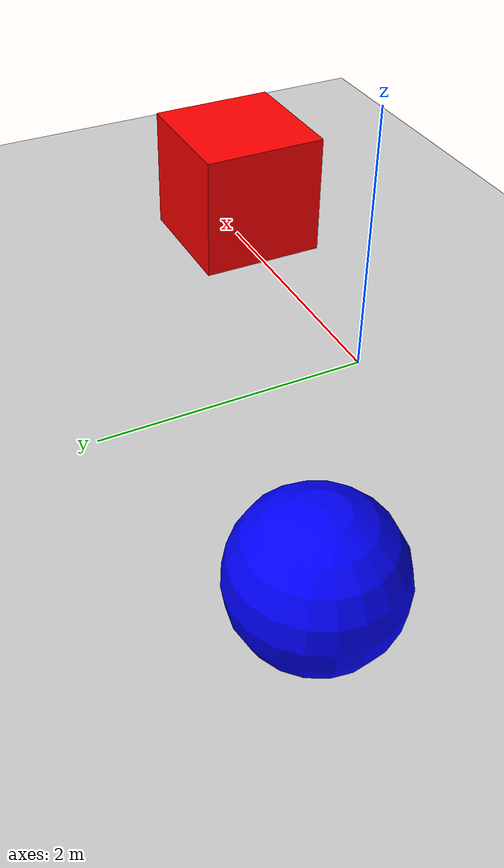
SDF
<?xml version="1.0" ?>
<sdf version="1.6">
  <world name="trajectory_follower">

    <physics name="1ms" type="ignored">
      <max_step_size>0.001</max_step_size>
      <real_time_factor>1.0</real_time_factor>
    </physics>
    <plugin
      filename="ignition-gazebo-physics-system"
      name="ignition::gazebo::systems::Physics">
    </plugin>
    <plugin
      filename="ignition-gazebo-user-commands-system"
      name="ignition::gazebo::systems::UserCommands">
    </plugin>
    <plugin
      filename="ignition-gazebo-scene-broadcaster-system"
      name="ignition::gazebo::systems::SceneBroadcaster">
    </plugin>

    <light type="directional" name="sun">
      <cast_shadows>true</cast_shadows>
      <pose>0 0 10 0 0 0</pose>
      <diffuse>1 1 1 1</diffuse>
      <specular>0.5 0.5 0.5 1</specular>
      <attenuation>
        <range>1000</range>
        <constant>0.9</constant>
        <linear>0.01</linear>
        <quadratic>0.001</quadratic>
      </attenuation>
      <direction>-0.5 0.1 -0.9</direction>
    </light>

    <model name="ground_plane">
      <static>true</static>
      <link name="link">
        <collision name="collision">
          <geometry>
            <plane>
              <normal>0 0 1</normal>
              <size>100 100</size>
            </plane>
          </geometry>
        </collision>
        <visual name="visual">
          <geometry>
            <plane>
              <normal>0 0 1</normal>
              <size>100 100</size>
            </plane>
          </geometry>
          <material>
            <ambient>0.8 0.8 0.8 1</ambient>
            <diffuse>0.8 0.8 0.8 1</diffuse>
            <specular>0.8 0.8 0.8 1</specular>
          </material>
        </visual>
      </link>
    </model>

    <model name="box">
      <pose>2 0 0.5 0 0 0</pose>
      <link name="box_link">
        <inertial>
          <inertia>
            <ixx>0.16666</ixx>
            <ixy>0</ixy>
            <ixz>0</ixz>
            <iyy>0.16666</iyy>
            <iyz>0</iyz>
            <izz>0.16666</izz>
          </inertia>
          <mass>1.0</mass>
        </inertial>
        <collision name="box_collision">
          <geometry>
            <box>
              <size>1 1 1</size>
            </box>
          </geometry>
        </collision>

        <visual name="box_visual">
          <geometry>
            <box>
              <size>1 1 1</size>
            </box>
          </geometry>
          <material>
            <ambient>1 0 0 1</ambient>
            <diffuse>1 0 0 1</diffuse>
            <specular>1 0 0 1</specular>
          </material>
        </visual>

      </link>

      <plugin
        filename="ignition-gazebo-audioplayer-system"
        name="ignition::gazebo::systems::AudioPlayer">
        <audio>
          <device>default</device>
        </audio>
      </plugin>

    </model>

    <model name="sphere">
      <pose>-2 1.5 0.5 0 0 0</pose>
      <link name="link">
        <collision name="collision">
          <geometry>
            <sphere>
              <radius>0.5</radius>
            </sphere>
          </geometry>
        </collision>
        <visual name="visual">
          <geometry>
            <sphere>
              <radius>0.5</radius>
            </sphere>
          </geometry>
          <material>
            <ambient>0 0 1 1</ambient>
            <diffuse>0 0 1 1</diffuse>
            <specular>0 0 1 1</specular>
          </material>
        </visual>
      </link>

    </model>

  </world>
</sdf>
